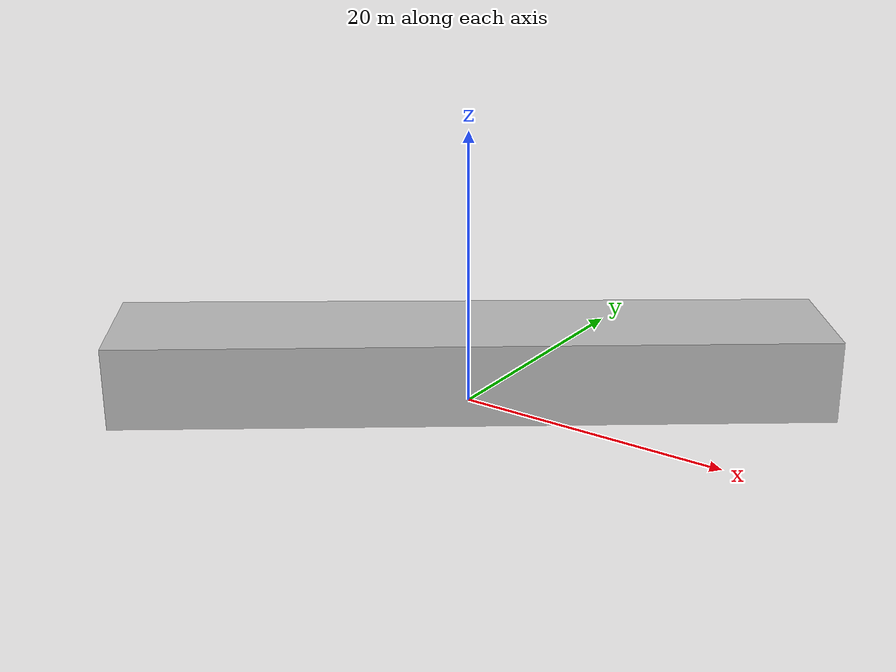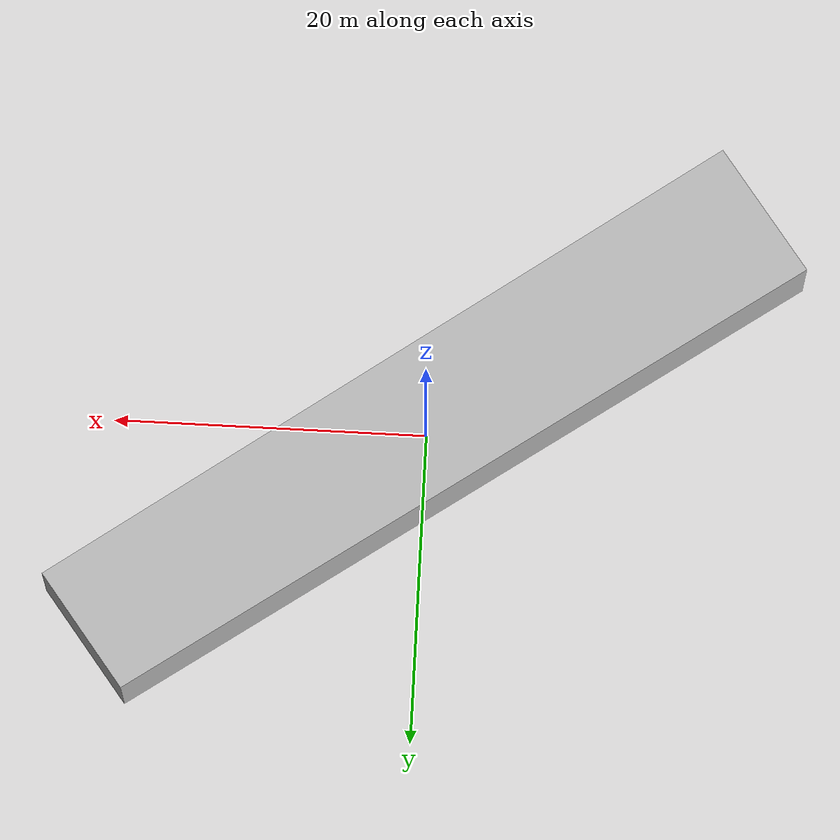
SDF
<?xml version="1.0" ?>
<sdf version="1.7">
  <model name="building_0073_assumed_a_estufa">
    <static>true</static>
    <link name="building_link">
      <visual name="building_visual">
        <geometry>
          <mesh>
            <uri>model://building_0073_assumed_a_estufa/meshes/construction_0073_assumed_A_Estufa_h6m.obj</uri>
          </mesh>
        </geometry>
      </visual>
    <collision name="building_collision">
      <geometry>
        <mesh>
          <uri>model://building_0073_assumed_a_estufa/meshes/construction_0073_assumed_A_Estufa_h6m.obj</uri>
        </mesh>
      </geometry>
    </collision>
    </link>
  </model>
</sdf>
